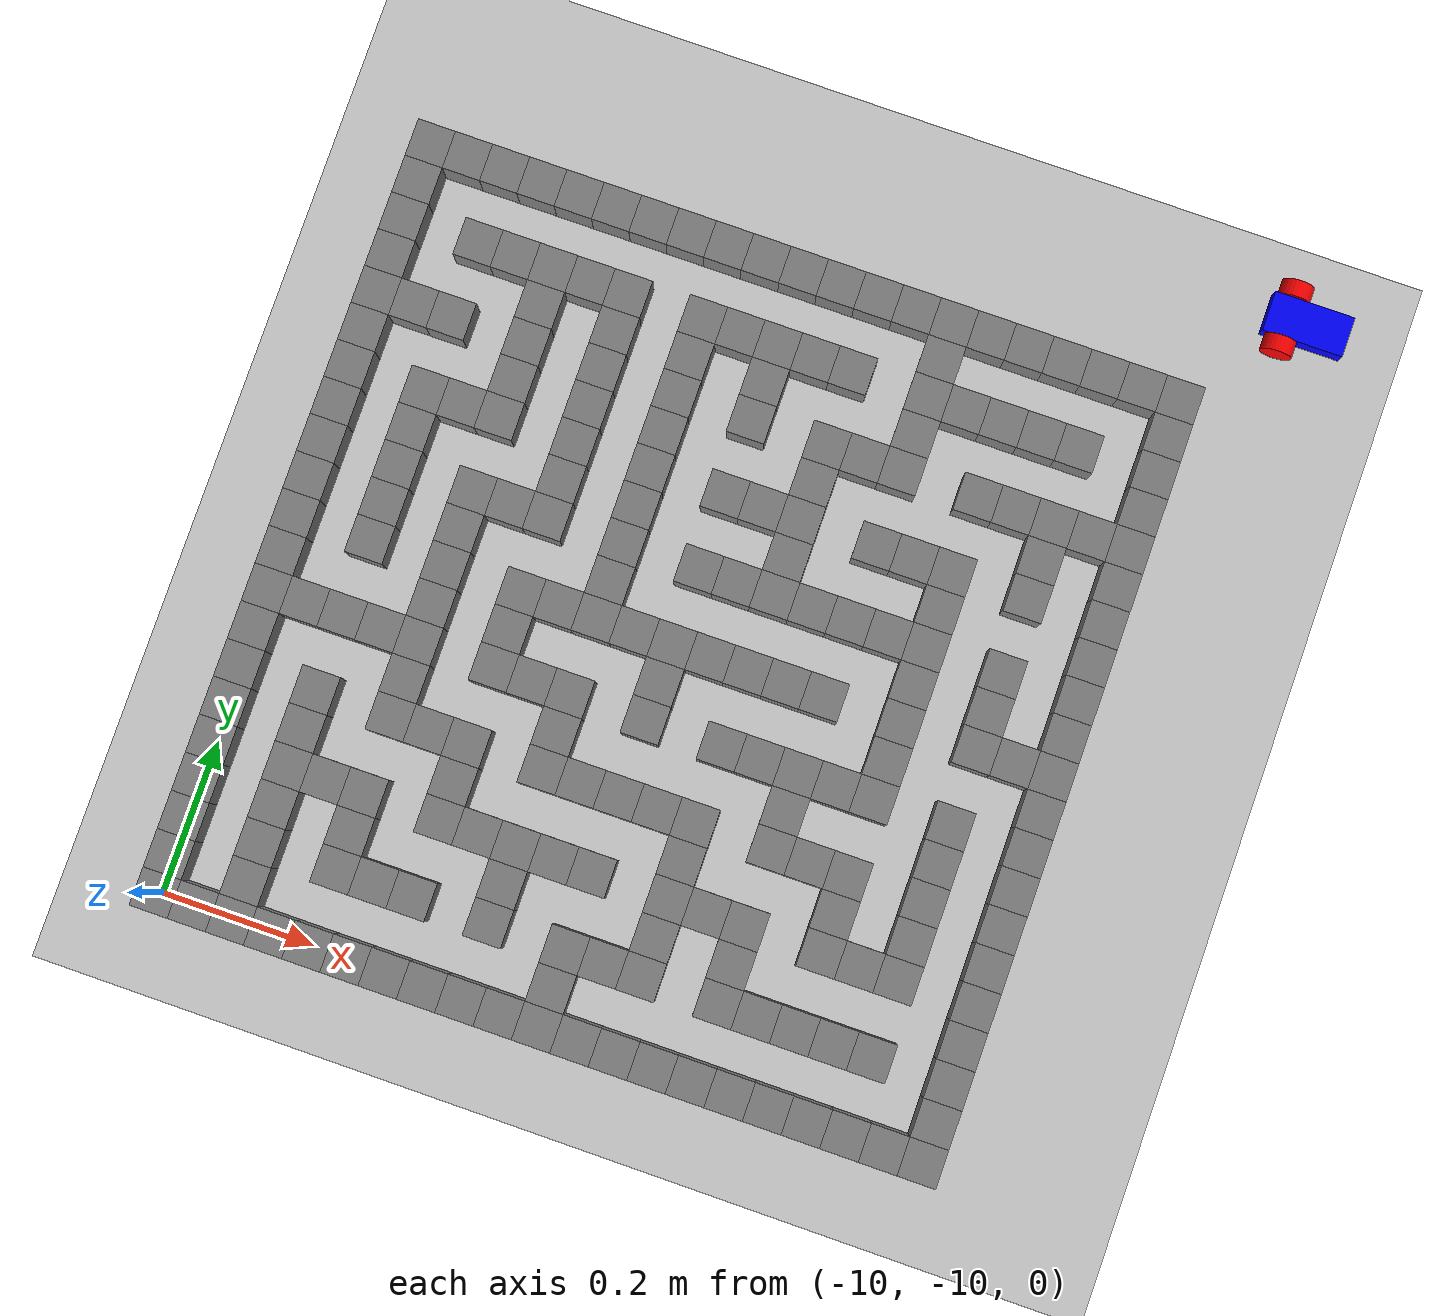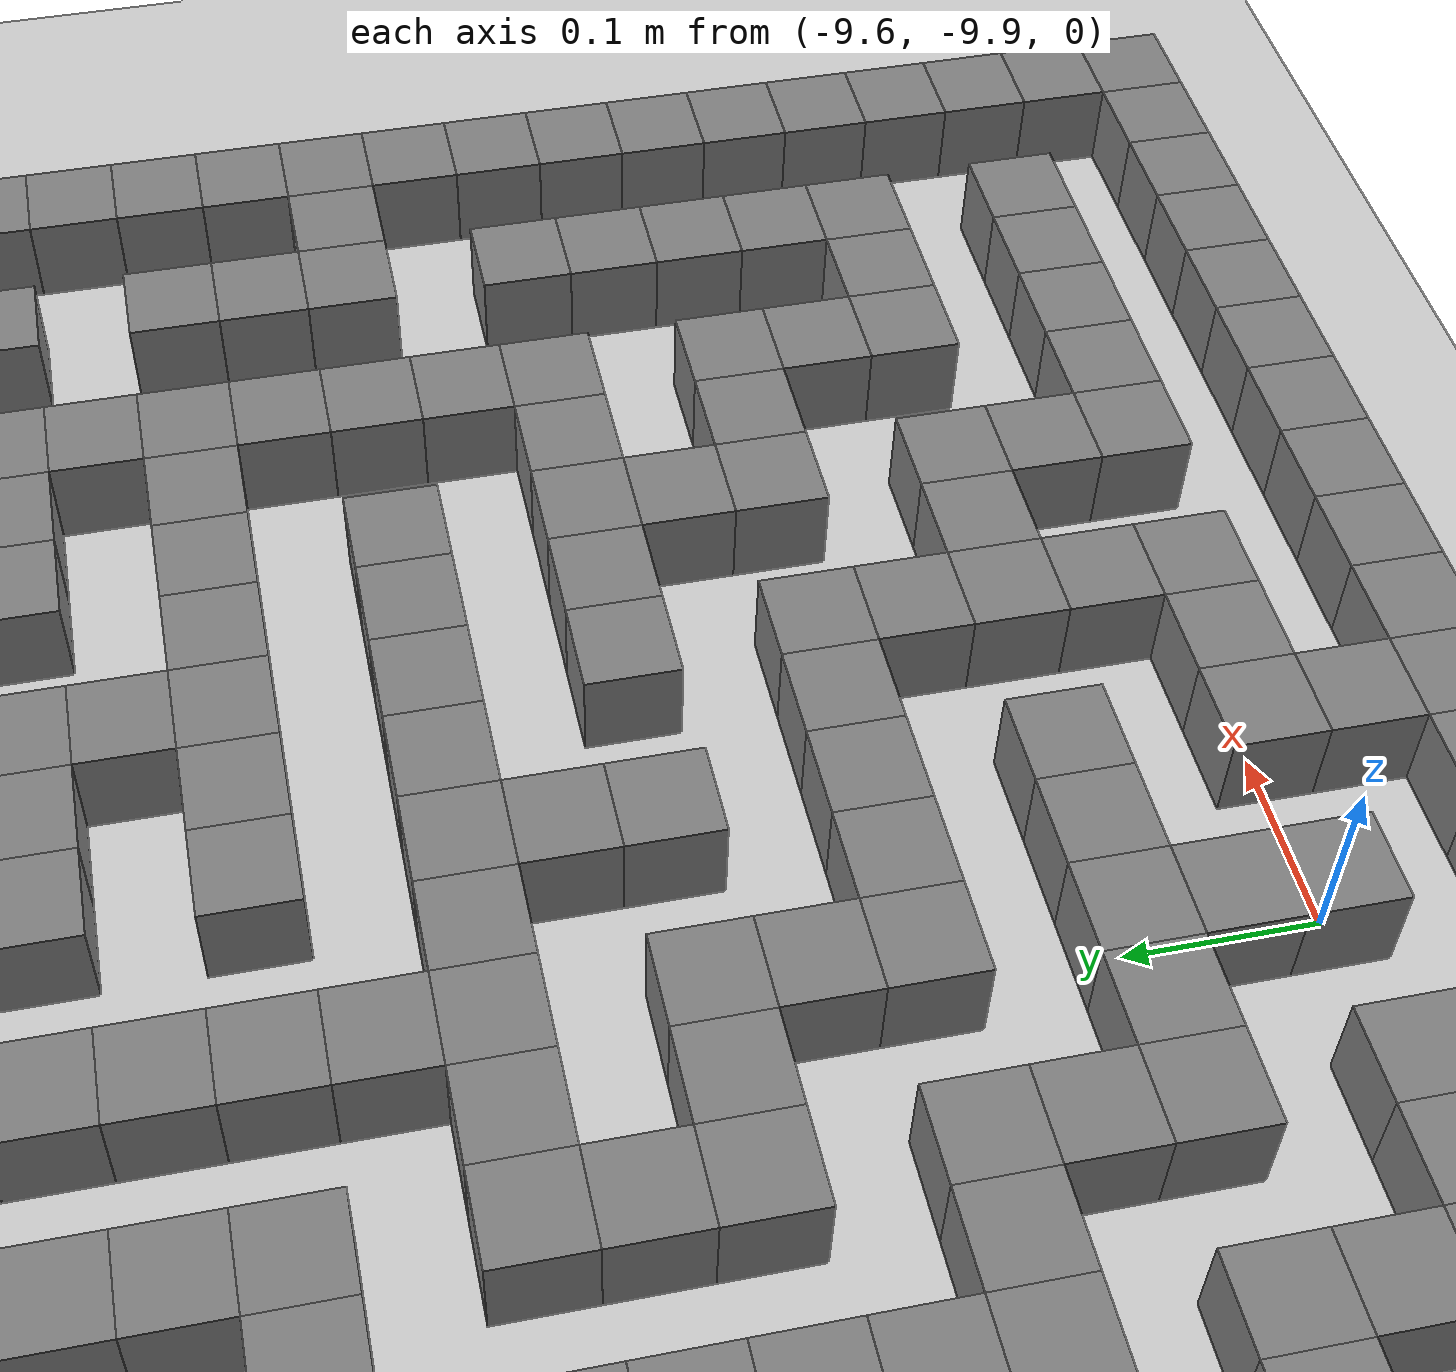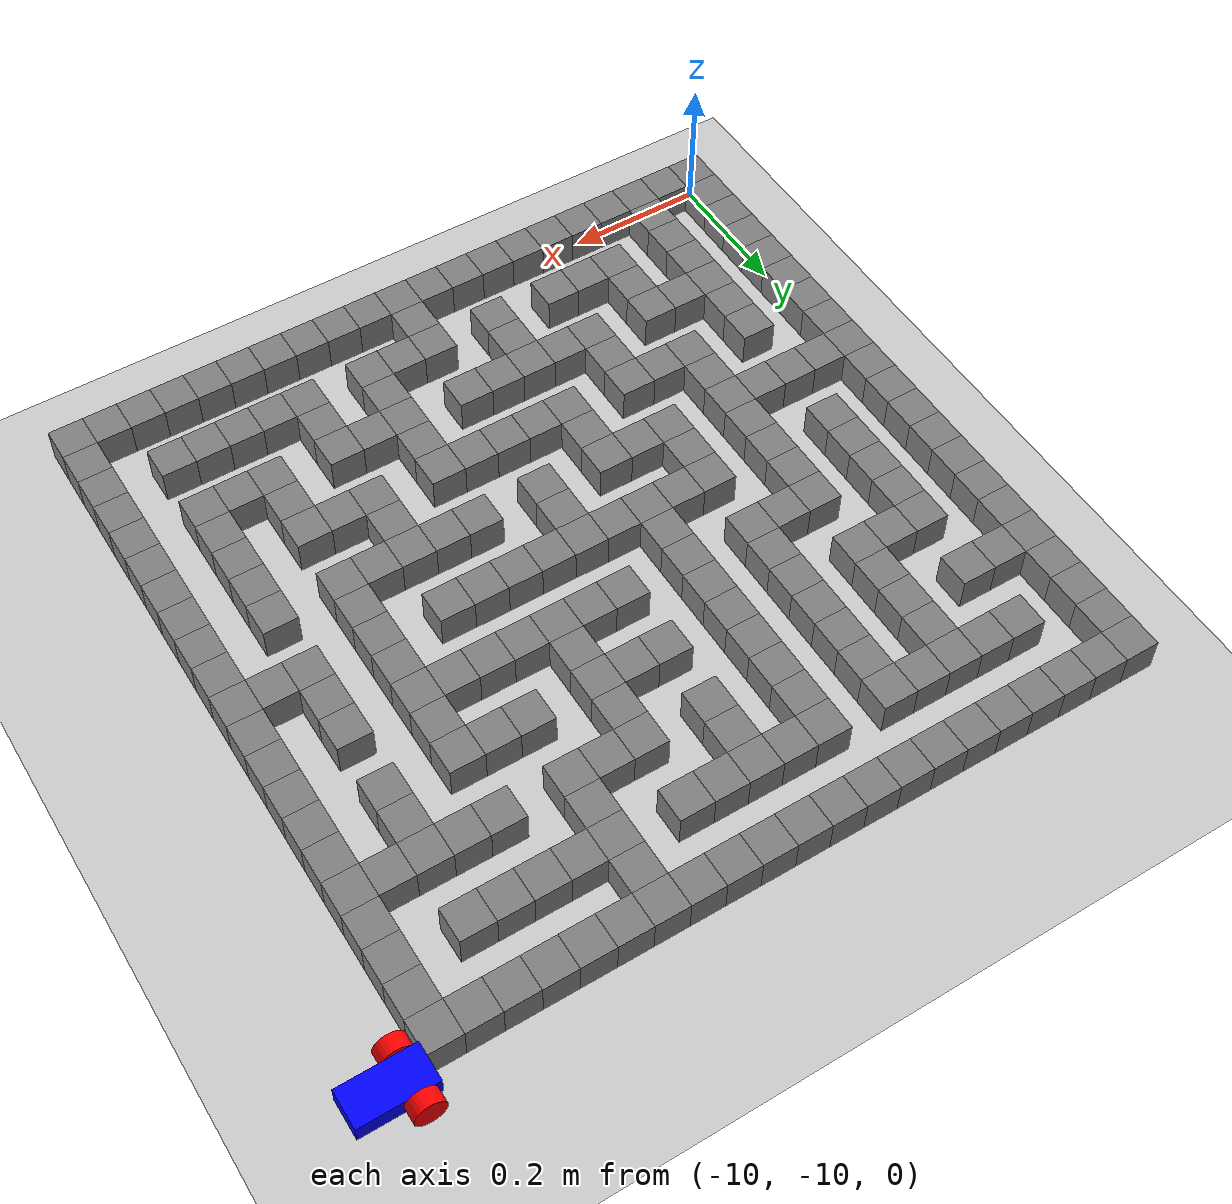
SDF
<?xml version="1.0" ?>
<sdf version="1.8">
    <world name="car_world">
        <include>
            <uri>file:///home/deyung/ros2_ws/src/myproject/maze_model.sdf</uri>
            <pose>-10 -10 0 0 0 0</pose> <!-- Maze at origin -->
        </include>
        <physics name="1ms" type="ignored">
            <max_step_size>0.001</max_step_size>
            <real_time_factor>1.0</real_time_factor>
        </physics>
        <!-- Moving Forward-->
        <plugin
            filename="gz-sim-triggered-publisher-system"
            name="gz::sim::systems::TriggeredPublisher">
            <input type="gz.msgs.Int32" topic="/keyboard/keypress">
            <match field="data">16777235</match>
            </input>
            <output type="gz.msgs.Twist" topic="/cmd_vel">
            linear: {x: 2}, angular: {z: 0.0}
            </output>
        </plugin>
        <!-- Moving Backward-->
        <plugin filename="gz-sim-triggered-publisher-system"
               name="gz::sim::systems::TriggeredPublisher">
           <input type="gz.msgs.Int32" topic="/keyboard/keypress">
               <match field="data">16777237</match>
           </input>
           <output type="gz.msgs.Twist" topic="/cmd_vel">
               linear: {x: -2}, angular: {z: 0.0}
           </output>
        </plugin>
        <!-- Left turn-->
         <plugin filename="gz-sim-triggered-publisher-system"
               name="gz::sim::systems::TriggeredPublisher">
           <input type="gz.msgs.Int32" topic="/keyboard/keypress">
               <match field="data">16777234</match>
           </input>
           <output type="gz.msgs.Twist" topic="/cmd_vel">
               linear: {x: 0.01}, angular: {z: 2}
           </output>
        </plugin>
        <!-- Right turn-->
         <plugin filename="gz-sim-triggered-publisher-system"
               name="gz::sim::systems::TriggeredPublisher">
           <input type="gz.msgs.Int32" topic="/keyboard/keypress">
               <match field="data">16777236</match>
           </input>
           <output type="gz.msgs.Twist" topic="/cmd_vel">
               linear: {x: 0.01}, angular: {z: -2}
           </output>
        </plugin>
        <plugin
            filename="gz-sim-sensors-system"
            name="gz::sim::systems::Sensors">
            <render_engine>ogre2</render_engine>
        </plugin>
        <plugin
            filename="gz-sim-physics-system"
            name="gz::sim::systems::Physics">
        </plugin>
        <plugin
            filename="gz-sim-user-commands-system"
            name="gz::sim::systems::UserCommands">
        </plugin>
        <plugin
            filename="gz-sim-scene-broadcaster-system"
            name="gz::sim::systems::SceneBroadcaster">
        </plugin>
        <plugin
            filename="gz-sim-imu-system"
            name="gz::sim::systems::Imu">
        </plugin>
        <plugin
            filename="gz-sim-contact-system"
            name="gz::sim::systems::Contact">
        </plugin>

        <light type="directional" name="sun">
            <cast_shadows>true</cast_shadows>
            <pose>0 0 10 0 0 0</pose>
            <diffuse>0.8 0.8 0.8 1</diffuse>
            <specular>0.2 0.2 0.2 1</specular>
            <attenuation>
                <range>1000</range>
                <constant>0.9</constant>
                <linear>0.01</linear>
                <quadratic>0.001</quadratic>
            </attenuation>
            <direction>-0.5 0.1 -0.9</direction>
        </light>

        <model name="ground_plane">
            <static>true</static>
            <link name="link">
                <collision name="collision">
                <geometry>
                    <plane>
                    <normal>0 0 1</normal>
                    </plane>
                </geometry>
                </collision>
                <visual name="visual">
                <geometry>
                    <plane>
                    <normal>0 0 1</normal>
                    <size>100 100</size>
                    </plane>
                </geometry>
                <material>
                    <ambient>0.8 0.8 0.8 1</ambient>
                    <diffuse>0.8 0.8 0.8 1</diffuse>
                    <specular>0.8 0.8 0.8 1</specular>
                </material>
                </visual>
            </link>
        </model>

        <model name='vehicle_blue' canonical_link='chassis'>

            <pose relative_to='world'>-8.9 -8.9 0.2 0 0 0</pose>   <!--the pose is relative to the start point of the maze-->
            <frame name="lidar_frame" attached_to='chassis'>
                    <pose>0.8 0 0.5 0 0 0</pose>
            </frame>
            <!--chassis-->
            <link name='chassis'>
                <pose relative_to='__model__'>0 0 0 0 0 0</pose>

                <inertial> <!--inertial properties of the link mass, inertia matix density is 1.14395
                all numbers is in SI unit-->
                    <mass>0.000143</mass>
                    <inertia>
                        <ixx>0.000000447</ixx>
                        <ixy>0</ixy>
                        <ixz>0</ixz>
                        <iyy>0.00000152</iyy>
                        <iyz>0</iyz>
                        <izz>0.00000179</izz>
                    </inertia>
                </inertial>
                <visual name='visual'>
                    <geometry>
                        <box>
                            <size>0.1 0.05 0.025</size>
                        </box>
                    </geometry>
                    <!--Color of the link -->
                    <material>
                        <ambient>0.0 0.0 1.0 1</ambient>
                        <diffuse>0.0 0.0 1.0 1</diffuse>
                        <specular>0.0 0.0 1.0 1</specular>
                    </material>
                </visual>
                <collision name='collision'>
                    <geometry>
                        <box>
                           <size>0.1 0.05 0.025</size>
                        </box>
                    </geometry>
                </collision>
                <sensor name="imu_sensor" type="imu">
                    <always_on>1</always_on>
                    <update_rate>1</update_rate>
                    <visualize>true</visualize>
                    <topic>imu</topic>
                </sensor>

                <sensor name='gpu_lidar' type='gpu_lidar'>"
                    <pose relative_to='lidar_frame'>0 0 0 0 0 0</pose>
                    <topic>lidar</topic>
                    <update_rate>10</update_rate>
                    <ray>
                        <scan>
                            <horizontal>
                                <samples>640</samples>
                                <resolution>1</resolution>
                                <min_angle>-1.396263</min_angle>
                                <max_angle>1.396263</max_angle>
                            </horizontal>
                            <vertical>
                                <samples>1</samples>
                                <resolution>0.01</resolution>
                                <min_angle>0</min_angle>
                                <max_angle>0</max_angle>
                            </vertical>
                        </scan>
                        <range>
                            <min>0.08</min>
                            <max>10.0</max>
                            <resolution>0.01</resolution>
                        </range>
                    </ray>
                    <always_on>1</always_on>
                    <visualize>true</visualize>
                </sensor>
                <!-- Contact (bumper) sensor -->
                <sensor name="bumper_contacts" type="contact">
                      <update_rate>50</update_rate>
                      <!-- Monitor this/these collision(s) for contacts -->
                      <contact>
                        <collision>collision</collision>
                      </contact>
                      <!-- Gazebo Transport topic name -->
                      <topic>contacts</topic>
                      <always_on>true</always_on>
                      <visualize>false</visualize>
                </sensor>
            </link>

            <!--Left wheel-->
            <link name='left_wheel'>
                <pose relative_to="chassis">-0.025 0.035 0 -1.5707 0 0</pose> <!--angles are in radian-->
                <inertial>
                    <mass>0.25</mass>
                    <inertia>
                        <ixx>0.000033333</ixx>
                        <ixy>0</ixy>
                        <ixz>0</ixz>
                        <iyy>0.000033333</iyy>
                        <iyz>0</iyz>
                        <izz>0.00005</izz>
                    </inertia>
                </inertial>
                <visual name='visual'>
                    <geometry>
                        <cylinder>
                            <radius>0.02</radius>
                            <length>0.02</length>
                        </cylinder>
                    </geometry>
                    <material>
                        <ambient>1.0 0.0 0.0 1</ambient>
                        <diffuse>1.0 0.0 0.0 1</diffuse>
                        <specular>1.0 0.0 0.0 1</specular>
                    </material>
                </visual>
                <collision name='collision'>
                    <geometry>
                        <cylinder>
                            <radius>0.02</radius>
                            <length>0.02</length>
                        </cylinder>
                    </geometry>
                </collision>
            </link>

            <!--The same as left wheel but with different position-->
            <link name='right_wheel'>
                <pose relative_to="chassis">-0.025 -0.035 0 -1.5707 0 0</pose> <!--angles are in radian-->
                <inertial>
                    <mass>0.25</mass>
                    <inertia>
                        <ixx>0.000033333</ixx>
                        <ixy>0</ixy>
                        <ixz>0</ixz>
                        <iyy>0.000033333</iyy>
                        <iyz>0</iyz>
                        <izz>0.00005</izz>
                    </inertia>
                </inertial>
                <visual name='visual'>
                    <geometry>
                        <cylinder>
                            <radius>0.02</radius>
                            <length>0.02</length>
                        </cylinder>
                    </geometry>
                    <material>
                        <ambient>1.0 0.0 0.0 1</ambient>
                        <diffuse>1.0 0.0 0.0 1</diffuse>
                        <specular>1.0 0.0 0.0 1</specular>
                    </material>
                </visual>
                <collision name='collision'>
                    <geometry>
                        <cylinder>
                            <radius>0.02</radius>
                            <length>0.02</length>
                        </cylinder>
                    </geometry>
                </collision>
            </link>

            <!--arbitrary frame-->
            <frame name="caster_frame" attached_to='chassis'>
                <pose>0.04 0 -0.01 0 0 0</pose>
            </frame>

            <!--caster wheel-->
            <link name='caster'>
                <pose relative_to='caster_frame'/>
                <inertial>
                    <mass>0.125</mass>
                    <inertia>
                        <ixx>0.000005</ixx>
                        <ixy>0</ixy>
                        <ixz>0</ixz>
                        <iyy>0.000005</iyy>
                        <iyz>0</iyz>
                        <izz>0.000005</izz>
                    </inertia>
                </inertial>
                <visual name='visual'>
                    <geometry>
                        <sphere>
                            <radius>0.01</radius>
                        </sphere>
                    </geometry>
                    <material>
                        <ambient>0.0 1 0.0 1</ambient>
                        <diffuse>0.0 1 0.0 1</diffuse>
                        <specular>0.0 1 0.0 1</specular>
                    </material>
                </visual>
                <collision name='collision'>
                    <geometry>
                        <sphere>
                            <radius>0.01</radius>
                        </sphere>
                    </geometry>
                </collision>
            </link>

            <!--left wheel joint-->
            <joint name='left_wheel_joint' type='revolute'>
                <pose relative_to='left_wheel'/>
                <parent>chassis</parent>
                <child>left_wheel</child>
                <axis>
                    <xyz expressed_in='__model__'>0 1 0</xyz> <!--can be descired to any frame or even arbitrary frames-->
                    <limit>
                        <lower>-1.79769e+308</lower>    <!--negative infinity-->
                        <upper>1.79769e+308</upper>     <!--positive infinity-->
                    </limit>
                </axis>
            </joint>

            <!--right wheel joint-->
            <joint name='right_wheel_joint' type='revolute'>
                <pose relative_to='right_wheel'/>
                <parent>chassis</parent>
                <child>right_wheel</child>
                <axis>
                    <xyz expressed_in='__model__'>0 1 0</xyz>
                    <limit>
                        <lower>-1.79769e+308</lower>    <!--negative infinity-->
                        <upper>1.79769e+308</upper>     <!--positive infinity-->
                    </limit>
                </axis>
            </joint>

            <!--caster wheel joint--> <!--pose defult value is the child-->
            <joint name='caster_wheel' type='ball'>
                <parent>chassis</parent>
                <child>caster</child>
            </joint>

            <plugin
                filename="gz-sim-diff-drive-system"
                name="gz::sim::systems::DiffDrive">
                <left_joint>left_wheel_joint</left_joint>
                <right_joint>right_wheel_joint</right_joint>
                <wheel_separation>1.2</wheel_separation>
                <wheel_radius>0.4</wheel_radius>
                <odom_publish_frequency>1</odom_publish_frequency>
                <topic>cmd_vel</topic>
                <odometry_topic>odom</odometry_topic>
            </plugin>
        </model>

    </world>
</sdf>
